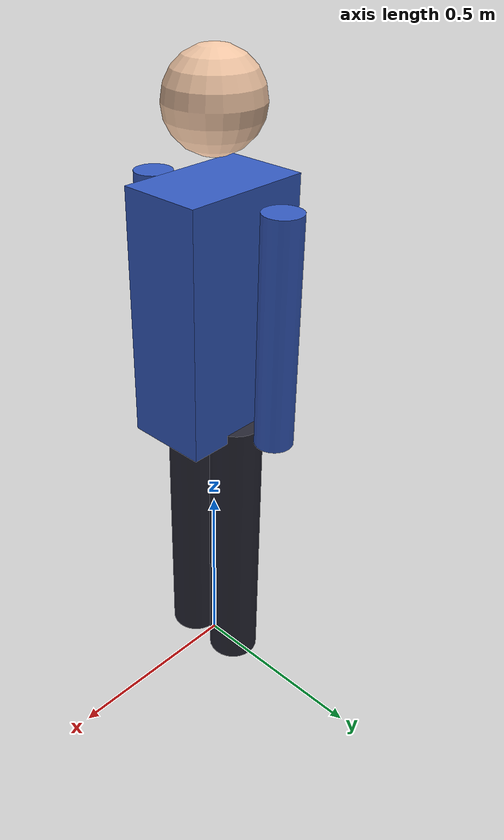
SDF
<?xml version="1.0" ?>
<sdf version="1.6">
  <model name="nav2can_person1">
    <static>true</static>
    <link name="body">
      <pose>0 0 0 0 0 0</pose>

      <!-- Torso: blue jacket-like rectangular block -->
      <visual name="torso_visual">
        <pose>0 0 1.1 0 0 0</pose>
        <geometry>
          <box><size>0.35 0.22 0.65</size></box>
        </geometry>
        <material>
          <ambient>0.15 0.25 0.55 1</ambient>
          <diffuse>0.20 0.35 0.75 1</diffuse>
        </material>
      </visual>

      <!-- Head: skin-toned sphere -->
      <visual name="head_visual">
        <pose>0 0 1.6 0 0 0</pose>
        <geometry>
          <sphere><radius>0.12</radius></sphere>
        </geometry>
        <material>
          <ambient>0.80 0.65 0.55 1</ambient>
          <diffuse>0.95 0.78 0.65 1</diffuse>
        </material>
      </visual>

      <!-- Legs: two dark cylinders -->
      <visual name="leg_l_visual">
        <pose>0 0.08 0.4 0 0 0</pose>
        <geometry>
          <cylinder><radius>0.07</radius><length>0.8</length></cylinder>
        </geometry>
        <material>
          <ambient>0.10 0.10 0.15 1</ambient>
          <diffuse>0.15 0.15 0.20 1</diffuse>
        </material>
      </visual>
      <visual name="leg_r_visual">
        <pose>0 -0.08 0.4 0 0 0</pose>
        <geometry>
          <cylinder><radius>0.07</radius><length>0.8</length></cylinder>
        </geometry>
        <material>
          <ambient>0.10 0.10 0.15 1</ambient>
          <diffuse>0.15 0.15 0.20 1</diffuse>
        </material>
      </visual>

      <!-- Arms: two slimmer cylinders, same colour as torso -->
      <visual name="arm_l_visual">
        <pose>0 0.21 1.1 0 0 0</pose>
        <geometry>
          <cylinder><radius>0.05</radius><length>0.6</length></cylinder>
        </geometry>
        <material>
          <ambient>0.15 0.25 0.55 1</ambient>
          <diffuse>0.20 0.35 0.75 1</diffuse>
        </material>
      </visual>
      <visual name="arm_r_visual">
        <pose>0 -0.21 1.1 0 0 0</pose>
        <geometry>
          <cylinder><radius>0.05</radius><length>0.6</length></cylinder>
        </geometry>
        <material>
          <ambient>0.15 0.25 0.55 1</ambient>
          <diffuse>0.20 0.35 0.75 1</diffuse>
        </material>
      </visual>

      <!-- Single collision cylinder so the lidar sees the figure
           and the obstacle layer reacts.  Approximates the person's
           footprint without modelling each limb individually. -->
      <collision name="collision">
        <pose>0 0 0.9 0 0 0</pose>
        <geometry>
          <cylinder><radius>0.25</radius><length>1.75</length></cylinder>
        </geometry>
      </collision>
    </link>
  </model>
</sdf>
